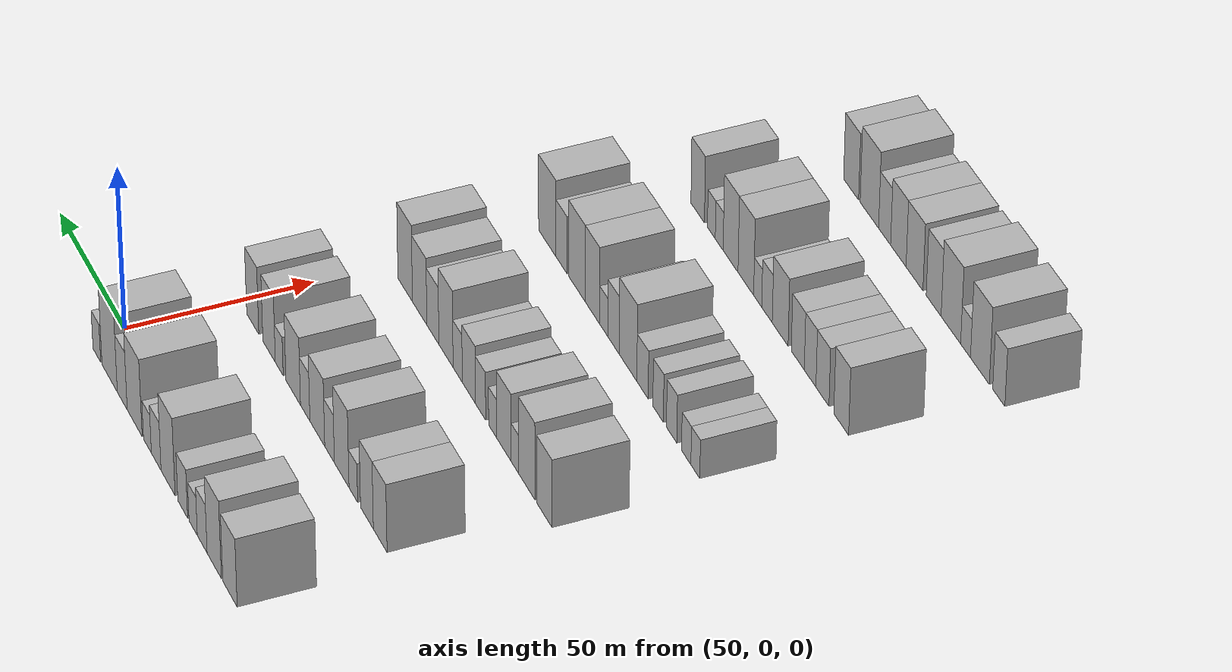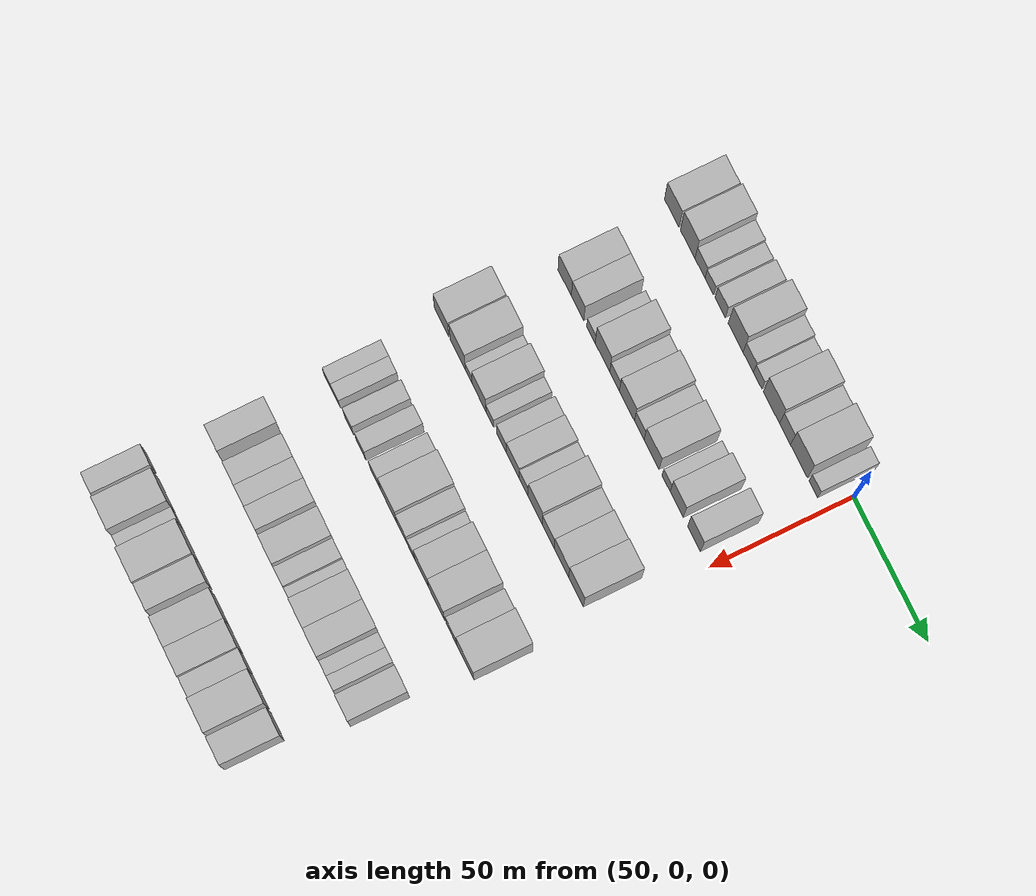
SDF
<sdf version="1.6">
 <world name="default">
  <model name="building_54">
   <static>1</static>
   <pose>50.0000 -105.0947 0 0.000000 0.000000 0.000000</pose>
   <link name="link">
    <pose>0 0 10.50 0 0 0</pose>
    <collision name="collision"><geometry><box><size>20.0000 10.1037 21.0000</size></box></geometry></collision>
    <visual name="visual">
     <cast_shadows>0</cast_shadows>
     <geometry><box><size>20.0000 10.1037 21.0000</size></box></geometry>
     <material>
      <script>
       <uri>model://HANNAS_wall/materials/scripts</uri>
       <uri>model://HANNAS_wall/materials/textures</uri>
       <name>vrc/HANNAS_wall</name>
      </script>
     </material>
    </visual>
   </link>
  </model>
  <model name="building_55">
   <static>1</static>
   <pose>50.0000 -93.9762 0 0.000000 0.000000 0.000000</pose>
   <link name="link">
    <pose>0 0 12.00 0 0 0</pose>
    <collision name="collision"><geometry><box><size>20.0000 10.1333 24.0000</size></box></geometry></collision>
    <visual name="visual">
     <cast_shadows>0</cast_shadows>
     <geometry><box><size>20.0000 10.1333 24.0000</size></box></geometry>
     <material>
      <script>
       <uri>model://HANNAS_wall/materials/scripts</uri>
       <uri>model://HANNAS_wall/materials/textures</uri>
       <name>vrc/HANNAS_wall</name>
      </script>
     </material>
    </visual>
   </link>
  </model>
  <model name="building_56">
   <static>1</static>
   <pose>50.0000 -85.4042 0 0.000000 0.000000 0.000000</pose>
   <link name="link">
    <pose>0 0 7.50 0 0 0</pose>
    <collision name="collision"><geometry><box><size>20.0000 7.0107 15.0000</size></box></geometry></collision>
    <visual name="visual">
     <cast_shadows>0</cast_shadows>
     <geometry><box><size>20.0000 7.0107 15.0000</size></box></geometry>
     <material>
      <script>
       <uri>model://HANNAS_wall/materials/scripts</uri>
       <uri>model://HANNAS_wall/materials/textures</uri>
       <name>vrc/HANNAS_wall</name>
      </script>
     </material>
    </visual>
   </link>
  </model>
  <model name="building_57">
   <static>1</static>
   <pose>50.0000 -78.9322 0 0.000000 0.000000 0.000000</pose>
   <link name="link">
    <pose>0 0 6.00 0 0 0</pose>
    <collision name="collision"><geometry><box><size>20.0000 5.9334 12.0000</size></box></geometry></collision>
    <visual name="visual">
     <cast_shadows>0</cast_shadows>
     <geometry><box><size>20.0000 5.9334 12.0000</size></box></geometry>
     <material>
      <script>
       <uri>model://HANNAS_wall/materials/scripts</uri>
       <uri>model://HANNAS_wall/materials/textures</uri>
       <name>vrc/HANNAS_wall</name>
      </script>
     </material>
    </visual>
   </link>
  </model>
  <model name="building_58">
   <static>1</static>
   <pose>50.0000 -71.4161 0 0.000000 0.000000 0.000000</pose>
   <link name="link">
    <pose>0 0 7.50 0 0 0</pose>
    <collision name="collision"><geometry><box><size>20.0000 7.0990 15.0000</size></box></geometry></collision>
    <visual name="visual">
     <cast_shadows>0</cast_shadows>
     <geometry><box><size>20.0000 7.0990 15.0000</size></box></geometry>
     <material>
      <script>
       <uri>model://HANNAS_wall/materials/scripts</uri>
       <uri>model://HANNAS_wall/materials/textures</uri>
       <name>vrc/HANNAS_wall</name>
      </script>
     </material>
    </visual>
   </link>
  </model>
  <model name="building_59">
   <static>1</static>
   <pose>50.0000 -60.7440 0 0.000000 0.000000 0.000000</pose>
   <link name="link">
    <pose>0 0 12.00 0 0 0</pose>
    <collision name="collision"><geometry><box><size>20.0000 10.2452 24.0000</size></box></geometry></collision>
    <visual name="visual">
     <cast_shadows>0</cast_shadows>
     <geometry><box><size>20.0000 10.2452 24.0000</size></box></geometry>
     <material>
      <script>
       <uri>model://HANNAS_wall/materials/scripts</uri>
       <uri>model://HANNAS_wall/materials/textures</uri>
       <name>vrc/HANNAS_wall</name>
      </script>
     </material>
    </visual>
   </link>
  </model>
  <model name="building_60">
   <static>1</static>
   <pose>50.0000 -52.0560 0 0.000000 0.000000 0.000000</pose>
   <link name="link">
    <pose>0 0 7.50 0 0 0</pose>
    <collision name="collision"><geometry><box><size>20.0000 7.1307 15.0000</size></box></geometry></collision>
    <visual name="visual">
     <cast_shadows>0</cast_shadows>
     <geometry><box><size>20.0000 7.1307 15.0000</size></box></geometry>
     <material>
      <script>
       <uri>model://HANNAS_wall/materials/scripts</uri>
       <uri>model://HANNAS_wall/materials/textures</uri>
       <name>vrc/HANNAS_wall</name>
      </script>
     </material>
    </visual>
   </link>
  </model>
  <model name="building_61">
   <static>1</static>
   <pose>50.0000 -45.5938 0 0.000000 0.000000 0.000000</pose>
   <link name="link">
    <pose>0 0 6.00 0 0 0</pose>
    <collision name="collision"><geometry><box><size>20.0000 5.7937 12.0000</size></box></geometry></collision>
    <visual name="visual">
     <cast_shadows>0</cast_shadows>
     <geometry><box><size>20.0000 5.7937 12.0000</size></box></geometry>
     <material>
      <script>
       <uri>model://HANNAS_wall/materials/scripts</uri>
       <uri>model://HANNAS_wall/materials/textures</uri>
       <name>vrc/HANNAS_wall</name>
      </script>
     </material>
    </visual>
   </link>
  </model>
  <model name="building_62">
   <static>1</static>
   <pose>50.0000 -36.1358 0 0.000000 0.000000 0.000000</pose>
   <link name="link">
    <pose>0 0 12.00 0 0 0</pose>
    <collision name="collision"><geometry><box><size>20.0000 11.1222 24.0000</size></box></geometry></collision>
    <visual name="visual">
     <cast_shadows>0</cast_shadows>
     <geometry><box><size>20.0000 11.1222 24.0000</size></box></geometry>
     <material>
      <script>
       <uri>model://HANNAS_wall/materials/scripts</uri>
       <uri>model://HANNAS_wall/materials/textures</uri>
       <name>vrc/HANNAS_wall</name>
      </script>
     </material>
    </visual>
   </link>
  </model>
  <model name="building_63">
   <static>1</static>
   <pose>50.0000 -26.8559 0 0.000000 0.000000 0.000000</pose>
   <link name="link">
    <pose>0 0 9.00 0 0 0</pose>
    <collision name="collision"><geometry><box><size>20.0000 7.4377 18.0000</size></box></geometry></collision>
    <visual name="visual">
     <cast_shadows>0</cast_shadows>
     <geometry><box><size>20.0000 7.4377 18.0000</size></box></geometry>
     <material>
      <script>
       <uri>model://HANNAS_wall/materials/scripts</uri>
       <uri>model://HANNAS_wall/materials/textures</uri>
       <name>vrc/HANNAS_wall</name>
      </script>
     </material>
    </visual>
   </link>
  </model>
  <model name="building_64">
   <static>1</static>
   <pose>50.0000 -17.3600 0 0.000000 0.000000 0.000000</pose>
   <link name="link">
    <pose>0 0 12.00 0 0 0</pose>
    <collision name="collision"><geometry><box><size>20.0000 11.5541 24.0000</size></box></geometry></collision>
    <visual name="visual">
     <cast_shadows>0</cast_shadows>
     <geometry><box><size>20.0000 11.5541 24.0000</size></box></geometry>
     <material>
      <script>
       <uri>model://HANNAS_wall/materials/scripts</uri>
       <uri>model://HANNAS_wall/materials/textures</uri>
       <name>vrc/HANNAS_wall</name>
      </script>
     </material>
    </visual>
   </link>
  </model>
  <model name="building_65">
   <static>1</static>
   <pose>50.0000 -7.6387 0 0.000000 0.000000 0.000000</pose>
   <link name="link">
    <pose>0 0 6.00 0 0 0</pose>
    <collision name="collision"><geometry><box><size>20.0000 5.8884 12.0000</size></box></geometry></collision>
    <visual name="visual">
     <cast_shadows>0</cast_shadows>
     <geometry><box><size>20.0000 5.8884 12.0000</size></box></geometry>
     <material>
      <script>
       <uri>model://HANNAS_wall/materials/scripts</uri>
       <uri>model://HANNAS_wall/materials/textures</uri>
       <name>vrc/HANNAS_wall</name>
      </script>
     </material>
    </visual>
   </link>
  </model>
  <model name="building_201">
   <static>1</static>
   <pose>90.0000 -99.9037 0 0.000000 0.000000 0.000000</pose>
   <link name="link">
    <pose>0 0 10.50 0 0 0</pose>
    <collision name="collision"><geometry><box><size>20.0000 9.3138 21.0000</size></box></geometry></collision>
    <visual name="visual">
     <cast_shadows>0</cast_shadows>
     <geometry><box><size>20.0000 9.3138 21.0000</size></box></geometry>
     <material>
      <script>
       <uri>model://HANNAS_wall/materials/scripts</uri>
       <uri>model://HANNAS_wall/materials/textures</uri>
       <name>vrc/HANNAS_wall</name>
      </script>
     </material>
    </visual>
   </link>
  </model>
  <model name="building_202">
   <static>1</static>
   <pose>90.0000 -90.8659 0 0.000000 0.000000 0.000000</pose>
   <link name="link">
    <pose>0 0 10.50 0 0 0</pose>
    <collision name="collision"><geometry><box><size>20.0000 8.7618 21.0000</size></box></geometry></collision>
    <visual name="visual">
     <cast_shadows>0</cast_shadows>
     <geometry><box><size>20.0000 8.7618 21.0000</size></box></geometry>
     <material>
      <script>
       <uri>model://HANNAS_wall/materials/scripts</uri>
       <uri>model://HANNAS_wall/materials/textures</uri>
       <name>vrc/HANNAS_wall</name>
      </script>
     </material>
    </visual>
   </link>
  </model>
  <model name="building_203">
   <static>1</static>
   <pose>90.0000 -81.5222 0 0.000000 0.000000 0.000000</pose>
   <link name="link">
    <pose>0 0 6.00 0 0 0</pose>
    <collision name="collision"><geometry><box><size>20.0000 5.9256 12.0000</size></box></geometry></collision>
    <visual name="visual">
     <cast_shadows>0</cast_shadows>
     <geometry><box><size>20.0000 5.9256 12.0000</size></box></geometry>
     <material>
      <script>
       <uri>model://HANNAS_wall/materials/scripts</uri>
       <uri>model://HANNAS_wall/materials/textures</uri>
       <name>vrc/HANNAS_wall</name>
      </script>
     </material>
    </visual>
   </link>
  </model>
  <model name="building_204">
   <static>1</static>
   <pose>90.0000 -73.4813 0 0.000000 0.000000 0.000000</pose>
   <link name="link">
    <pose>0 0 12.00 0 0 0</pose>
    <collision name="collision"><geometry><box><size>20.0000 10.1562 24.0000</size></box></geometry></collision>
    <visual name="visual">
     <cast_shadows>0</cast_shadows>
     <geometry><box><size>20.0000 10.1562 24.0000</size></box></geometry>
     <material>
      <script>
       <uri>model://HANNAS_wall/materials/scripts</uri>
       <uri>model://HANNAS_wall/materials/textures</uri>
       <name>vrc/HANNAS_wall</name>
      </script>
     </material>
    </visual>
   </link>
  </model>
  <model name="building_205">
   <static>1</static>
   <pose>90.0000 -65.0353 0 0.000000 0.000000 0.000000</pose>
   <link name="link">
    <pose>0 0 7.50 0 0 0</pose>
    <collision name="collision"><geometry><box><size>20.0000 6.7358 15.0000</size></box></geometry></collision>
    <visual name="visual">
     <cast_shadows>0</cast_shadows>
     <geometry><box><size>20.0000 6.7358 15.0000</size></box></geometry>
     <material>
      <script>
       <uri>model://HANNAS_wall/materials/scripts</uri>
       <uri>model://HANNAS_wall/materials/textures</uri>
       <name>vrc/HANNAS_wall</name>
      </script>
     </material>
    </visual>
   </link>
  </model>
  <model name="building_206">
   <static>1</static>
   <pose>90.0000 -56.4411 0 0.000000 0.000000 0.000000</pose>
   <link name="link">
    <pose>0 0 10.50 0 0 0</pose>
    <collision name="collision"><geometry><box><size>20.0000 10.4526 21.0000</size></box></geometry></collision>
    <visual name="visual">
     <cast_shadows>0</cast_shadows>
     <geometry><box><size>20.0000 10.4526 21.0000</size></box></geometry>
     <material>
      <script>
       <uri>model://HANNAS_wall/materials/scripts</uri>
       <uri>model://HANNAS_wall/materials/textures</uri>
       <name>vrc/HANNAS_wall</name>
      </script>
     </material>
    </visual>
   </link>
  </model>
  <model name="building_207">
   <static>1</static>
   <pose>90.0000 -47.8772 0 0.000000 0.000000 0.000000</pose>
   <link name="link">
    <pose>0 0 7.50 0 0 0</pose>
    <collision name="collision"><geometry><box><size>20.0000 6.6750 15.0000</size></box></geometry></collision>
    <visual name="visual">
     <cast_shadows>0</cast_shadows>
     <geometry><box><size>20.0000 6.6750 15.0000</size></box></geometry>
     <material>
      <script>
       <uri>model://HANNAS_wall/materials/scripts</uri>
       <uri>model://HANNAS_wall/materials/textures</uri>
       <name>vrc/HANNAS_wall</name>
      </script>
     </material>
    </visual>
   </link>
  </model>
  <model name="building_208">
   <static>1</static>
   <pose>90.0000 -39.3540 0 0.000000 0.000000 0.000000</pose>
   <link name="link">
    <pose>0 0 10.50 0 0 0</pose>
    <collision name="collision"><geometry><box><size>20.0000 10.3715 21.0000</size></box></geometry></collision>
    <visual name="visual">
     <cast_shadows>0</cast_shadows>
     <geometry><box><size>20.0000 10.3715 21.0000</size></box></geometry>
     <material>
      <script>
       <uri>model://HANNAS_wall/materials/scripts</uri>
       <uri>model://HANNAS_wall/materials/textures</uri>
       <name>vrc/HANNAS_wall</name>
      </script>
     </material>
    </visual>
   </link>
  </model>
  <model name="building_209">
   <static>1</static>
   <pose>90.0000 -29.3497 0 0.000000 0.000000 0.000000</pose>
   <link name="link">
    <pose>0 0 6.00 0 0 0</pose>
    <collision name="collision"><geometry><box><size>20.0000 5.6370 12.0000</size></box></geometry></collision>
    <visual name="visual">
     <cast_shadows>0</cast_shadows>
     <geometry><box><size>20.0000 5.6370 12.0000</size></box></geometry>
     <material>
      <script>
       <uri>model://HANNAS_wall/materials/scripts</uri>
       <uri>model://HANNAS_wall/materials/textures</uri>
       <name>vrc/HANNAS_wall</name>
      </script>
     </material>
    </visual>
   </link>
  </model>
  <model name="building_210">
   <static>1</static>
   <pose>90.0000 -22.0265 0 0.000000 0.000000 0.000000</pose>
   <link name="link">
    <pose>0 0 10.50 0 0 0</pose>
    <collision name="collision"><geometry><box><size>20.0000 9.0095 21.0000</size></box></geometry></collision>
    <visual name="visual">
     <cast_shadows>0</cast_shadows>
     <geometry><box><size>20.0000 9.0095 21.0000</size></box></geometry>
     <material>
      <script>
       <uri>model://HANNAS_wall/materials/scripts</uri>
       <uri>model://HANNAS_wall/materials/textures</uri>
       <name>vrc/HANNAS_wall</name>
      </script>
     </material>
    </visual>
   </link>
  </model>
  <model name="building_211">
   <static>1</static>
   <pose>90.0000 -10.1245 0 0.000000 0.000000 0.000000</pose>
   <link name="link">
    <pose>0 0 10.50 0 0 0</pose>
    <collision name="collision"><geometry><box><size>20.0000 8.7946 21.0000</size></box></geometry></collision>
    <visual name="visual">
     <cast_shadows>0</cast_shadows>
     <geometry><box><size>20.0000 8.7946 21.0000</size></box></geometry>
     <material>
      <script>
       <uri>model://HANNAS_wall/materials/scripts</uri>
       <uri>model://HANNAS_wall/materials/textures</uri>
       <name>vrc/HANNAS_wall</name>
      </script>
     </material>
    </visual>
   </link>
  </model>
  <model name="building_337">
   <static>1</static>
   <pose>130.0000 -105.5141 0 0.000000 0.000000 0.000000</pose>
   <link name="link">
    <pose>0 0 10.50 0 0 0</pose>
    <collision name="collision"><geometry><box><size>20.0000 10.1408 21.0000</size></box></geometry></collision>
    <visual name="visual">
     <cast_shadows>0</cast_shadows>
     <geometry><box><size>20.0000 10.1408 21.0000</size></box></geometry>
     <material>
      <script>
       <uri>model://HANNAS_wall/materials/scripts</uri>
       <uri>model://HANNAS_wall/materials/textures</uri>
       <name>vrc/HANNAS_wall</name>
      </script>
     </material>
    </visual>
   </link>
  </model>
  <model name="building_338">
   <static>1</static>
   <pose>130.0000 -94.0481 0 0.000000 0.000000 0.000000</pose>
   <link name="link">
    <pose>0 0 12.00 0 0 0</pose>
    <collision name="collision"><geometry><box><size>20.0000 10.7912 24.0000</size></box></geometry></collision>
    <visual name="visual">
     <cast_shadows>0</cast_shadows>
     <geometry><box><size>20.0000 10.7912 24.0000</size></box></geometry>
     <material>
      <script>
       <uri>model://HANNAS_wall/materials/scripts</uri>
       <uri>model://HANNAS_wall/materials/textures</uri>
       <name>vrc/HANNAS_wall</name>
      </script>
     </material>
    </visual>
   </link>
  </model>
  <model name="building_339">
   <static>1</static>
   <pose>130.0000 -86.2237 0 0.000000 0.000000 0.000000</pose>
   <link name="link">
    <pose>0 0 6.00 0 0 0</pose>
    <collision name="collision"><geometry><box><size>20.0000 4.8578 12.0000</size></box></geometry></collision>
    <visual name="visual">
     <cast_shadows>0</cast_shadows>
     <geometry><box><size>20.0000 4.8578 12.0000</size></box></geometry>
     <material>
      <script>
       <uri>model://HANNAS_wall/materials/scripts</uri>
       <uri>model://HANNAS_wall/materials/textures</uri>
       <name>vrc/HANNAS_wall</name>
      </script>
     </material>
    </visual>
   </link>
  </model>
  <model name="building_340">
   <static>1</static>
   <pose>130.0000 -78.9483 0 0.000000 0.000000 0.000000</pose>
   <link name="link">
    <pose>0 0 10.50 0 0 0</pose>
    <collision name="collision"><geometry><box><size>20.0000 9.6929 21.0000</size></box></geometry></collision>
    <visual name="visual">
     <cast_shadows>0</cast_shadows>
     <geometry><box><size>20.0000 9.6929 21.0000</size></box></geometry>
     <material>
      <script>
       <uri>model://HANNAS_wall/materials/scripts</uri>
       <uri>model://HANNAS_wall/materials/textures</uri>
       <name>vrc/HANNAS_wall</name>
      </script>
     </material>
    </visual>
   </link>
  </model>
  <model name="building_341">
   <static>1</static>
   <pose>130.0000 -71.4181 0 0.000000 0.000000 0.000000</pose>
   <link name="link">
    <pose>0 0 6.00 0 0 0</pose>
    <collision name="collision"><geometry><box><size>20.0000 5.3674 12.0000</size></box></geometry></collision>
    <visual name="visual">
     <cast_shadows>0</cast_shadows>
     <geometry><box><size>20.0000 5.3674 12.0000</size></box></geometry>
     <material>
      <script>
       <uri>model://HANNAS_wall/materials/scripts</uri>
       <uri>model://HANNAS_wall/materials/textures</uri>
       <name>vrc/HANNAS_wall</name>
      </script>
     </material>
    </visual>
   </link>
  </model>
  <model name="building_342">
   <static>1</static>
   <pose>130.0000 -63.2694 0 0.000000 0.000000 0.000000</pose>
   <link name="link">
    <pose>0 0 7.50 0 0 0</pose>
    <collision name="collision"><geometry><box><size>20.0000 6.9301 15.0000</size></box></geometry></collision>
    <visual name="visual">
     <cast_shadows>0</cast_shadows>
     <geometry><box><size>20.0000 6.9301 15.0000</size></box></geometry>
     <material>
      <script>
       <uri>model://HANNAS_wall/materials/scripts</uri>
       <uri>model://HANNAS_wall/materials/textures</uri>
       <name>vrc/HANNAS_wall</name>
      </script>
     </material>
    </visual>
   </link>
  </model>
  <model name="building_343">
   <static>1</static>
   <pose>130.0000 -55.3697 0 0.000000 0.000000 0.000000</pose>
   <link name="link">
    <pose>0 0 9.00 0 0 0</pose>
    <collision name="collision"><geometry><box><size>20.0000 8.8693 18.0000</size></box></geometry></collision>
    <visual name="visual">
     <cast_shadows>0</cast_shadows>
     <geometry><box><size>20.0000 8.8693 18.0000</size></box></geometry>
     <material>
      <script>
       <uri>model://HANNAS_wall/materials/scripts</uri>
       <uri>model://HANNAS_wall/materials/textures</uri>
       <name>vrc/HANNAS_wall</name>
      </script>
     </material>
    </visual>
   </link>
  </model>
  <model name="building_344">
   <static>1</static>
   <pose>130.0000 -47.7892 0 0.000000 0.000000 0.000000</pose>
   <link name="link">
    <pose>0 0 7.50 0 0 0</pose>
    <collision name="collision"><geometry><box><size>20.0000 6.2916 15.0000</size></box></geometry></collision>
    <visual name="visual">
     <cast_shadows>0</cast_shadows>
     <geometry><box><size>20.0000 6.2916 15.0000</size></box></geometry>
     <material>
      <script>
       <uri>model://HANNAS_wall/materials/scripts</uri>
       <uri>model://HANNAS_wall/materials/textures</uri>
       <name>vrc/HANNAS_wall</name>
      </script>
     </material>
    </visual>
   </link>
  </model>
  <model name="building_345">
   <static>1</static>
   <pose>130.0000 -39.7510 0 0.000000 0.000000 0.000000</pose>
   <link name="link">
    <pose>0 0 12.00 0 0 0</pose>
    <collision name="collision"><geometry><box><size>20.0000 9.7848 24.0000</size></box></geometry></collision>
    <visual name="visual">
     <cast_shadows>0</cast_shadows>
     <geometry><box><size>20.0000 9.7848 24.0000</size></box></geometry>
     <material>
      <script>
       <uri>model://HANNAS_wall/materials/scripts</uri>
       <uri>model://HANNAS_wall/materials/textures</uri>
       <name>vrc/HANNAS_wall</name>
      </script>
     </material>
    </visual>
   </link>
  </model>
  <model name="building_346">
   <static>1</static>
   <pose>130.0000 -30.6984 0 0.000000 0.000000 0.000000</pose>
   <link name="link">
    <pose>0 0 9.00 0 0 0</pose>
    <collision name="collision"><geometry><box><size>20.0000 8.3205 18.0000</size></box></geometry></collision>
    <visual name="visual">
     <cast_shadows>0</cast_shadows>
     <geometry><box><size>20.0000 8.3205 18.0000</size></box></geometry>
     <material>
      <script>
       <uri>model://HANNAS_wall/materials/scripts</uri>
       <uri>model://HANNAS_wall/materials/textures</uri>
       <name>vrc/HANNAS_wall</name>
      </script>
     </material>
    </visual>
   </link>
  </model>
  <model name="building_347">
   <static>1</static>
   <pose>130.0000 -21.5094 0 0.000000 0.000000 0.000000</pose>
   <link name="link">
    <pose>0 0 10.50 0 0 0</pose>
    <collision name="collision"><geometry><box><size>20.0000 10.0575 21.0000</size></box></geometry></collision>
    <visual name="visual">
     <cast_shadows>0</cast_shadows>
     <geometry><box><size>20.0000 10.0575 21.0000</size></box></geometry>
     <material>
      <script>
       <uri>model://HANNAS_wall/materials/scripts</uri>
       <uri>model://HANNAS_wall/materials/textures</uri>
       <name>vrc/HANNAS_wall</name>
      </script>
     </material>
    </visual>
   </link>
  </model>
  <model name="building_348">
   <static>1</static>
   <pose>130.0000 -11.3740 0 0.000000 0.000000 0.000000</pose>
   <link name="link">
    <pose>0 0 12.00 0 0 0</pose>
    <collision name="collision"><geometry><box><size>20.0000 10.2135 24.0000</size></box></geometry></collision>
    <visual name="visual">
     <cast_shadows>0</cast_shadows>
     <geometry><box><size>20.0000 10.2135 24.0000</size></box></geometry>
     <material>
      <script>
       <uri>model://HANNAS_wall/materials/scripts</uri>
       <uri>model://HANNAS_wall/materials/textures</uri>
       <name>vrc/HANNAS_wall</name>
      </script>
     </material>
    </visual>
   </link>
  </model>
  <model name="building_471">
   <static>1</static>
   <pose>170.0000 -103.8618 0 0.000000 0.000000 0.000000</pose>
   <link name="link">
    <pose>0 0 6.00 0 0 0</pose>
    <collision name="collision"><geometry><box><size>20.0000 5.6277 12.0000</size></box></geometry></collision>
    <visual name="visual">
     <cast_shadows>0</cast_shadows>
     <geometry><box><size>20.0000 5.6277 12.0000</size></box></geometry>
     <material>
      <script>
       <uri>model://HANNAS_wall/materials/scripts</uri>
       <uri>model://HANNAS_wall/materials/textures</uri>
       <name>vrc/HANNAS_wall</name>
      </script>
     </material>
    </visual>
   </link>
  </model>
  <model name="building_472">
   <static>1</static>
   <pose>170.0000 -98.1045 0 0.000000 0.000000 0.000000</pose>
   <link name="link">
    <pose>0 0 6.00 0 0 0</pose>
    <collision name="collision"><geometry><box><size>20.0000 5.8869 12.0000</size></box></geometry></collision>
    <visual name="visual">
     <cast_shadows>0</cast_shadows>
     <geometry><box><size>20.0000 5.8869 12.0000</size></box></geometry>
     <material>
      <script>
       <uri>model://HANNAS_wall/materials/scripts</uri>
       <uri>model://HANNAS_wall/materials/textures</uri>
       <name>vrc/HANNAS_wall</name>
      </script>
     </material>
    </visual>
   </link>
  </model>
  <model name="building_473">
   <static>1</static>
   <pose>170.0000 -88.8521 0 0.000000 0.000000 0.000000</pose>
   <link name="link">
    <pose>0 0 7.50 0 0 0</pose>
    <collision name="collision"><geometry><box><size>20.0000 6.6180 15.0000</size></box></geometry></collision>
    <visual name="visual">
     <cast_shadows>0</cast_shadows>
     <geometry><box><size>20.0000 6.6180 15.0000</size></box></geometry>
     <material>
      <script>
       <uri>model://HANNAS_wall/materials/scripts</uri>
       <uri>model://HANNAS_wall/materials/textures</uri>
       <name>vrc/HANNAS_wall</name>
      </script>
     </material>
    </visual>
   </link>
  </model>
  <model name="building_474">
   <static>1</static>
   <pose>170.0000 -80.1754 0 0.000000 0.000000 0.000000</pose>
   <link name="link">
    <pose>0 0 7.50 0 0 0</pose>
    <collision name="collision"><geometry><box><size>20.0000 6.7354 15.0000</size></box></geometry></collision>
    <visual name="visual">
     <cast_shadows>0</cast_shadows>
     <geometry><box><size>20.0000 6.7354 15.0000</size></box></geometry>
     <material>
      <script>
       <uri>model://HANNAS_wall/materials/scripts</uri>
       <uri>model://HANNAS_wall/materials/textures</uri>
       <name>vrc/HANNAS_wall</name>
      </script>
     </material>
    </visual>
   </link>
  </model>
  <model name="building_475">
   <static>1</static>
   <pose>170.0000 -70.1252 0 0.000000 0.000000 0.000000</pose>
   <link name="link">
    <pose>0 0 7.50 0 0 0</pose>
    <collision name="collision"><geometry><box><size>20.0000 7.3649 15.0000</size></box></geometry></collision>
    <visual name="visual">
     <cast_shadows>0</cast_shadows>
     <geometry><box><size>20.0000 7.3649 15.0000</size></box></geometry>
     <material>
      <script>
       <uri>model://HANNAS_wall/materials/scripts</uri>
       <uri>model://HANNAS_wall/materials/textures</uri>
       <name>vrc/HANNAS_wall</name>
      </script>
     </material>
    </visual>
   </link>
  </model>
  <model name="building_476">
   <static>1</static>
   <pose>170.0000 -60.6506 0 0.000000 0.000000 0.000000</pose>
   <link name="link">
    <pose>0 0 12.00 0 0 0</pose>
    <collision name="collision"><geometry><box><size>20.0000 11.5844 24.0000</size></box></geometry></collision>
    <visual name="visual">
     <cast_shadows>0</cast_shadows>
     <geometry><box><size>20.0000 11.5844 24.0000</size></box></geometry>
     <material>
      <script>
       <uri>model://HANNAS_wall/materials/scripts</uri>
       <uri>model://HANNAS_wall/materials/textures</uri>
       <name>vrc/HANNAS_wall</name>
      </script>
     </material>
    </visual>
   </link>
  </model>
  <model name="building_477">
   <static>1</static>
   <pose>170.0000 -51.1130 0 0.000000 0.000000 0.000000</pose>
   <link name="link">
    <pose>0 0 9.00 0 0 0</pose>
    <collision name="collision"><geometry><box><size>20.0000 7.4908 18.0000</size></box></geometry></collision>
    <visual name="visual">
     <cast_shadows>0</cast_shadows>
     <geometry><box><size>20.0000 7.4908 18.0000</size></box></geometry>
     <material>
      <script>
       <uri>model://HANNAS_wall/materials/scripts</uri>
       <uri>model://HANNAS_wall/materials/textures</uri>
       <name>vrc/HANNAS_wall</name>
      </script>
     </material>
    </visual>
   </link>
  </model>
  <model name="building_478">
   <static>1</static>
   <pose>170.0000 -44.6581 0 0.000000 0.000000 0.000000</pose>
   <link name="link">
    <pose>0 0 6.00 0 0 0</pose>
    <collision name="collision"><geometry><box><size>20.0000 5.4190 12.0000</size></box></geometry></collision>
    <visual name="visual">
     <cast_shadows>0</cast_shadows>
     <geometry><box><size>20.0000 5.4190 12.0000</size></box></geometry>
     <material>
      <script>
       <uri>model://HANNAS_wall/materials/scripts</uri>
       <uri>model://HANNAS_wall/materials/textures</uri>
       <name>vrc/HANNAS_wall</name>
      </script>
     </material>
    </visual>
   </link>
  </model>
  <model name="building_479">
   <static>1</static>
   <pose>170.0000 -37.1397 0 0.000000 0.000000 0.000000</pose>
   <link name="link">
    <pose>0 0 12.00 0 0 0</pose>
    <collision name="collision"><geometry><box><size>20.0000 9.6180 24.0000</size></box></geometry></collision>
    <visual name="visual">
     <cast_shadows>0</cast_shadows>
     <geometry><box><size>20.0000 9.6180 24.0000</size></box></geometry>
     <material>
      <script>
       <uri>model://HANNAS_wall/materials/scripts</uri>
       <uri>model://HANNAS_wall/materials/textures</uri>
       <name>vrc/HANNAS_wall</name>
      </script>
     </material>
    </visual>
   </link>
  </model>
  <model name="building_480">
   <static>1</static>
   <pose>170.0000 -26.7853 0 0.000000 0.000000 0.000000</pose>
   <link name="link">
    <pose>0 0 12.00 0 0 0</pose>
    <collision name="collision"><geometry><box><size>20.0000 11.0908 24.0000</size></box></geometry></collision>
    <visual name="visual">
     <cast_shadows>0</cast_shadows>
     <geometry><box><size>20.0000 11.0908 24.0000</size></box></geometry>
     <material>
      <script>
       <uri>model://HANNAS_wall/materials/scripts</uri>
       <uri>model://HANNAS_wall/materials/textures</uri>
       <name>vrc/HANNAS_wall</name>
      </script>
     </material>
    </visual>
   </link>
  </model>
  <model name="building_481">
   <static>1</static>
   <pose>170.0000 -16.4982 0 0.000000 0.000000 0.000000</pose>
   <link name="link">
    <pose>0 0 9.00 0 0 0</pose>
    <collision name="collision"><geometry><box><size>20.0000 7.4834 18.0000</size></box></geometry></collision>
    <visual name="visual">
     <cast_shadows>0</cast_shadows>
     <geometry><box><size>20.0000 7.4834 18.0000</size></box></geometry>
     <material>
      <script>
       <uri>model://HANNAS_wall/materials/scripts</uri>
       <uri>model://HANNAS_wall/materials/textures</uri>
       <name>vrc/HANNAS_wall</name>
      </script>
     </material>
    </visual>
   </link>
  </model>
  <model name="building_482">
   <static>1</static>
   <pose>170.0000 -6.8192 0 0.000000 0.000000 0.000000</pose>
   <link name="link">
    <pose>0 0 12.00 0 0 0</pose>
    <collision name="collision"><geometry><box><size>20.0000 11.8747 24.0000</size></box></geometry></collision>
    <visual name="visual">
     <cast_shadows>0</cast_shadows>
     <geometry><box><size>20.0000 11.8747 24.0000</size></box></geometry>
     <material>
      <script>
       <uri>model://HANNAS_wall/materials/scripts</uri>
       <uri>model://HANNAS_wall/materials/textures</uri>
       <name>vrc/HANNAS_wall</name>
      </script>
     </material>
    </visual>
   </link>
  </model>
  <model name="building_606">
   <static>1</static>
   <pose>210.0000 -100.3347 0 0.000000 0.000000 0.000000</pose>
   <link name="link">
    <pose>0 0 10.50 0 0 0</pose>
    <collision name="collision"><geometry><box><size>20.0000 9.0553 21.0000</size></box></geometry></collision>
    <visual name="visual">
     <cast_shadows>0</cast_shadows>
     <geometry><box><size>20.0000 9.0553 21.0000</size></box></geometry>
     <material>
      <script>
       <uri>model://HANNAS_wall/materials/scripts</uri>
       <uri>model://HANNAS_wall/materials/textures</uri>
       <name>vrc/HANNAS_wall</name>
      </script>
     </material>
    </visual>
   </link>
  </model>
  <model name="building_607">
   <static>1</static>
   <pose>210.0000 -88.7830 0 0.000000 0.000000 0.000000</pose>
   <link name="link">
    <pose>0 0 9.00 0 0 0</pose>
    <collision name="collision"><geometry><box><size>20.0000 8.0482 18.0000</size></box></geometry></collision>
    <visual name="visual">
     <cast_shadows>0</cast_shadows>
     <geometry><box><size>20.0000 8.0482 18.0000</size></box></geometry>
     <material>
      <script>
       <uri>model://HANNAS_wall/materials/scripts</uri>
       <uri>model://HANNAS_wall/materials/textures</uri>
       <name>vrc/HANNAS_wall</name>
      </script>
     </material>
    </visual>
   </link>
  </model>
  <model name="building_608">
   <static>1</static>
   <pose>210.0000 -81.1356 0 0.000000 0.000000 0.000000</pose>
   <link name="link">
    <pose>0 0 9.00 0 0 0</pose>
    <collision name="collision"><geometry><box><size>20.0000 7.2466 18.0000</size></box></geometry></collision>
    <visual name="visual">
     <cast_shadows>0</cast_shadows>
     <geometry><box><size>20.0000 7.2466 18.0000</size></box></geometry>
     <material>
      <script>
       <uri>model://HANNAS_wall/materials/scripts</uri>
       <uri>model://HANNAS_wall/materials/textures</uri>
       <name>vrc/HANNAS_wall</name>
      </script>
     </material>
    </visual>
   </link>
  </model>
  <model name="building_609">
   <static>1</static>
   <pose>210.0000 -73.4512 0 0.000000 0.000000 0.000000</pose>
   <link name="link">
    <pose>0 0 9.00 0 0 0</pose>
    <collision name="collision"><geometry><box><size>20.0000 8.1221 18.0000</size></box></geometry></collision>
    <visual name="visual">
     <cast_shadows>0</cast_shadows>
     <geometry><box><size>20.0000 8.1221 18.0000</size></box></geometry>
     <material>
      <script>
       <uri>model://HANNAS_wall/materials/scripts</uri>
       <uri>model://HANNAS_wall/materials/textures</uri>
       <name>vrc/HANNAS_wall</name>
      </script>
     </material>
    </visual>
   </link>
  </model>
  <model name="building_610">
   <static>1</static>
   <pose>210.0000 -62.3912 0 0.000000 0.000000 0.000000</pose>
   <link name="link">
    <pose>0 0 10.50 0 0 0</pose>
    <collision name="collision"><geometry><box><size>20.0000 9.9980 21.0000</size></box></geometry></collision>
    <visual name="visual">
     <cast_shadows>0</cast_shadows>
     <geometry><box><size>20.0000 9.9980 21.0000</size></box></geometry>
     <material>
      <script>
       <uri>model://HANNAS_wall/materials/scripts</uri>
       <uri>model://HANNAS_wall/materials/textures</uri>
       <name>vrc/HANNAS_wall</name>
      </script>
     </material>
    </visual>
   </link>
  </model>
  <model name="building_611">
   <static>1</static>
   <pose>210.0000 -54.0361 0 0.000000 0.000000 0.000000</pose>
   <link name="link">
    <pose>0 0 7.50 0 0 0</pose>
    <collision name="collision"><geometry><box><size>20.0000 6.7122 15.0000</size></box></geometry></collision>
    <visual name="visual">
     <cast_shadows>0</cast_shadows>
     <geometry><box><size>20.0000 6.7122 15.0000</size></box></geometry>
     <material>
      <script>
       <uri>model://HANNAS_wall/materials/scripts</uri>
       <uri>model://HANNAS_wall/materials/textures</uri>
       <name>vrc/HANNAS_wall</name>
      </script>
     </material>
    </visual>
   </link>
  </model>
  <model name="building_612">
   <static>1</static>
   <pose>210.0000 -48.1165 0 0.000000 0.000000 0.000000</pose>
   <link name="link">
    <pose>0 0 6.00 0 0 0</pose>
    <collision name="collision"><geometry><box><size>20.0000 5.1270 12.0000</size></box></geometry></collision>
    <visual name="visual">
     <cast_shadows>0</cast_shadows>
     <geometry><box><size>20.0000 5.1270 12.0000</size></box></geometry>
     <material>
      <script>
       <uri>model://HANNAS_wall/materials/scripts</uri>
       <uri>model://HANNAS_wall/materials/textures</uri>
       <name>vrc/HANNAS_wall</name>
      </script>
     </material>
    </visual>
   </link>
  </model>
  <model name="building_613">
   <static>1</static>
   <pose>210.0000 -40.5364 0 0.000000 0.000000 0.000000</pose>
   <link name="link">
    <pose>0 0 12.00 0 0 0</pose>
    <collision name="collision"><geometry><box><size>20.0000 10.0331 24.0000</size></box></geometry></collision>
    <visual name="visual">
     <cast_shadows>0</cast_shadows>
     <geometry><box><size>20.0000 10.0331 24.0000</size></box></geometry>
     <material>
      <script>
       <uri>model://HANNAS_wall/materials/scripts</uri>
       <uri>model://HANNAS_wall/materials/textures</uri>
       <name>vrc/HANNAS_wall</name>
      </script>
     </material>
    </visual>
   </link>
  </model>
  <model name="building_614">
   <static>1</static>
   <pose>210.0000 -30.7064 0 0.000000 0.000000 0.000000</pose>
   <link name="link">
    <pose>0 0 12.00 0 0 0</pose>
    <collision name="collision"><geometry><box><size>20.0000 9.6269 24.0000</size></box></geometry></collision>
    <visual name="visual">
     <cast_shadows>0</cast_shadows>
     <geometry><box><size>20.0000 9.6269 24.0000</size></box></geometry>
     <material>
      <script>
       <uri>model://HANNAS_wall/materials/scripts</uri>
       <uri>model://HANNAS_wall/materials/textures</uri>
       <name>vrc/HANNAS_wall</name>
      </script>
     </material>
    </visual>
   </link>
  </model>
  <model name="building_615">
   <static>1</static>
   <pose>210.0000 -23.3282 0 0.000000 0.000000 0.000000</pose>
   <link name="link">
    <pose>0 0 6.00 0 0 0</pose>
    <collision name="collision"><geometry><box><size>20.0000 5.1297 12.0000</size></box></geometry></collision>
    <visual name="visual">
     <cast_shadows>0</cast_shadows>
     <geometry><box><size>20.0000 5.1297 12.0000</size></box></geometry>
     <material>
      <script>
       <uri>model://HANNAS_wall/materials/scripts</uri>
       <uri>model://HANNAS_wall/materials/textures</uri>
       <name>vrc/HANNAS_wall</name>
      </script>
     </material>
    </visual>
   </link>
  </model>
  <model name="building_616">
   <static>1</static>
   <pose>210.0000 -18.2164 0 0.000000 0.000000 0.000000</pose>
   <link name="link">
    <pose>0 0 6.00 0 0 0</pose>
    <collision name="collision"><geometry><box><size>20.0000 5.0939 12.0000</size></box></geometry></collision>
    <visual name="visual">
     <cast_shadows>0</cast_shadows>
     <geometry><box><size>20.0000 5.0939 12.0000</size></box></geometry>
     <material>
      <script>
       <uri>model://HANNAS_wall/materials/scripts</uri>
       <uri>model://HANNAS_wall/materials/textures</uri>
       <name>vrc/HANNAS_wall</name>
      </script>
     </material>
    </visual>
   </link>
  </model>
  <model name="building_617">
   <static>1</static>
   <pose>210.0000 -9.2212 0 0.000000 0.000000 0.000000</pose>
   <link name="link">
    <pose>0 0 10.50 0 0 0</pose>
    <collision name="collision"><geometry><box><size>20.0000 8.8965 21.0000</size></box></geometry></collision>
    <visual name="visual">
     <cast_shadows>0</cast_shadows>
     <geometry><box><size>20.0000 8.8965 21.0000</size></box></geometry>
     <material>
      <script>
       <uri>model://HANNAS_wall/materials/scripts</uri>
       <uri>model://HANNAS_wall/materials/textures</uri>
       <name>vrc/HANNAS_wall</name>
      </script>
     </material>
    </visual>
   </link>
  </model>
  <model name="building_744">
   <static>1</static>
   <pose>250.0000 -105.1565 0 0.000000 0.000000 0.000000</pose>
   <link name="link">
    <pose>0 0 9.00 0 0 0</pose>
    <collision name="collision"><geometry><box><size>20.0000 7.2223 18.0000</size></box></geometry></collision>
    <visual name="visual">
     <cast_shadows>0</cast_shadows>
     <geometry><box><size>20.0000 7.2223 18.0000</size></box></geometry>
     <material>
      <script>
       <uri>model://HANNAS_wall/materials/scripts</uri>
       <uri>model://HANNAS_wall/materials/textures</uri>
       <name>vrc/HANNAS_wall</name>
      </script>
     </material>
    </visual>
   </link>
  </model>
  <model name="building_745">
   <static>1</static>
   <pose>250.0000 -93.9219 0 0.000000 0.000000 0.000000</pose>
   <link name="link">
    <pose>0 0 12.00 0 0 0</pose>
    <collision name="collision"><geometry><box><size>20.0000 11.2468 24.0000</size></box></geometry></collision>
    <visual name="visual">
     <cast_shadows>0</cast_shadows>
     <geometry><box><size>20.0000 11.2468 24.0000</size></box></geometry>
     <material>
      <script>
       <uri>model://HANNAS_wall/materials/scripts</uri>
       <uri>model://HANNAS_wall/materials/textures</uri>
       <name>vrc/HANNAS_wall</name>
      </script>
     </material>
    </visual>
   </link>
  </model>
  <model name="building_746">
   <static>1</static>
   <pose>250.0000 -85.3510 0 0.000000 0.000000 0.000000</pose>
   <link name="link">
    <pose>0 0 6.00 0 0 0</pose>
    <collision name="collision"><geometry><box><size>20.0000 5.8950 12.0000</size></box></geometry></collision>
    <visual name="visual">
     <cast_shadows>0</cast_shadows>
     <geometry><box><size>20.0000 5.8950 12.0000</size></box></geometry>
     <material>
      <script>
       <uri>model://HANNAS_wall/materials/scripts</uri>
       <uri>model://HANNAS_wall/materials/textures</uri>
       <name>vrc/HANNAS_wall</name>
      </script>
     </material>
    </visual>
   </link>
  </model>
  <model name="building_747">
   <static>1</static>
   <pose>250.0000 -76.4954 0 0.000000 0.000000 0.000000</pose>
   <link name="link">
    <pose>0 0 12.00 0 0 0</pose>
    <collision name="collision"><geometry><box><size>20.0000 11.8162 24.0000</size></box></geometry></collision>
    <visual name="visual">
     <cast_shadows>0</cast_shadows>
     <geometry><box><size>20.0000 11.8162 24.0000</size></box></geometry>
     <material>
      <script>
       <uri>model://HANNAS_wall/materials/scripts</uri>
       <uri>model://HANNAS_wall/materials/textures</uri>
       <name>vrc/HANNAS_wall</name>
      </script>
     </material>
    </visual>
   </link>
  </model>
  <model name="building_748">
   <static>1</static>
   <pose>250.0000 -66.0309 0 0.000000 0.000000 0.000000</pose>
   <link name="link">
    <pose>0 0 10.50 0 0 0</pose>
    <collision name="collision"><geometry><box><size>20.0000 9.1128 21.0000</size></box></geometry></collision>
    <visual name="visual">
     <cast_shadows>0</cast_shadows>
     <geometry><box><size>20.0000 9.1128 21.0000</size></box></geometry>
     <material>
      <script>
       <uri>model://HANNAS_wall/materials/scripts</uri>
       <uri>model://HANNAS_wall/materials/textures</uri>
       <name>vrc/HANNAS_wall</name>
      </script>
     </material>
    </visual>
   </link>
  </model>
  <model name="building_749">
   <static>1</static>
   <pose>250.0000 -54.2878 0 0.000000 0.000000 0.000000</pose>
   <link name="link">
    <pose>0 0 10.50 0 0 0</pose>
    <collision name="collision"><geometry><box><size>20.0000 10.3733 21.0000</size></box></geometry></collision>
    <visual name="visual">
     <cast_shadows>0</cast_shadows>
     <geometry><box><size>20.0000 10.3733 21.0000</size></box></geometry>
     <material>
      <script>
       <uri>model://HANNAS_wall/materials/scripts</uri>
       <uri>model://HANNAS_wall/materials/textures</uri>
       <name>vrc/HANNAS_wall</name>
      </script>
     </material>
    </visual>
   </link>
  </model>
  <model name="building_750">
   <static>1</static>
   <pose>250.0000 -44.2839 0 0.000000 0.000000 0.000000</pose>
   <link name="link">
    <pose>0 0 10.50 0 0 0</pose>
    <collision name="collision"><geometry><box><size>20.0000 9.6345 21.0000</size></box></geometry></collision>
    <visual name="visual">
     <cast_shadows>0</cast_shadows>
     <geometry><box><size>20.0000 9.6345 21.0000</size></box></geometry>
     <material>
      <script>
       <uri>model://HANNAS_wall/materials/scripts</uri>
       <uri>model://HANNAS_wall/materials/textures</uri>
       <name>vrc/HANNAS_wall</name>
      </script>
     </material>
    </visual>
   </link>
  </model>
  <model name="building_751">
   <static>1</static>
   <pose>250.0000 -35.7139 0 0.000000 0.000000 0.000000</pose>
   <link name="link">
    <pose>0 0 9.00 0 0 0</pose>
    <collision name="collision"><geometry><box><size>20.0000 7.5055 18.0000</size></box></geometry></collision>
    <visual name="visual">
     <cast_shadows>0</cast_shadows>
     <geometry><box><size>20.0000 7.5055 18.0000</size></box></geometry>
     <material>
      <script>
       <uri>model://HANNAS_wall/materials/scripts</uri>
       <uri>model://HANNAS_wall/materials/textures</uri>
       <name>vrc/HANNAS_wall</name>
      </script>
     </material>
    </visual>
   </link>
  </model>
  <model name="building_752">
   <static>1</static>
   <pose>250.0000 -26.1635 0 0.000000 0.000000 0.000000</pose>
   <link name="link">
    <pose>0 0 12.00 0 0 0</pose>
    <collision name="collision"><geometry><box><size>20.0000 11.5953 24.0000</size></box></geometry></collision>
    <visual name="visual">
     <cast_shadows>0</cast_shadows>
     <geometry><box><size>20.0000 11.5953 24.0000</size></box></geometry>
     <material>
      <script>
       <uri>model://HANNAS_wall/materials/scripts</uri>
       <uri>model://HANNAS_wall/materials/textures</uri>
       <name>vrc/HANNAS_wall</name>
      </script>
     </material>
    </visual>
   </link>
  </model>
  <model name="building_753">
   <static>1</static>
   <pose>250.0000 -14.6105 0 0.000000 0.000000 0.000000</pose>
   <link name="link">
    <pose>0 0 10.50 0 0 0</pose>
    <collision name="collision"><geometry><box><size>20.0000 9.5108 21.0000</size></box></geometry></collision>
    <visual name="visual">
     <cast_shadows>0</cast_shadows>
     <geometry><box><size>20.0000 9.5108 21.0000</size></box></geometry>
     <material>
      <script>
       <uri>model://HANNAS_wall/materials/scripts</uri>
       <uri>model://HANNAS_wall/materials/textures</uri>
       <name>vrc/HANNAS_wall</name>
      </script>
     </material>
    </visual>
   </link>
  </model>
 </world>
</sdf>
